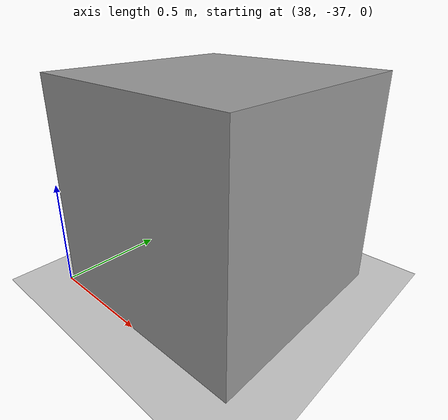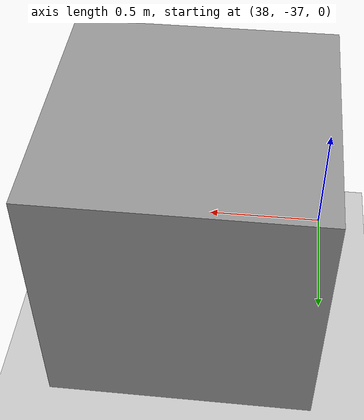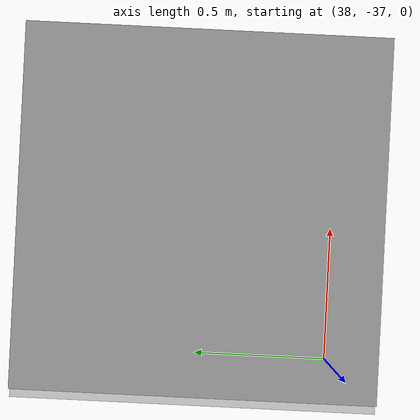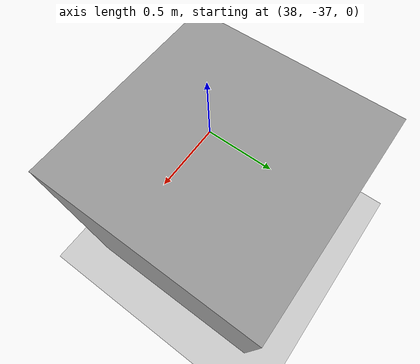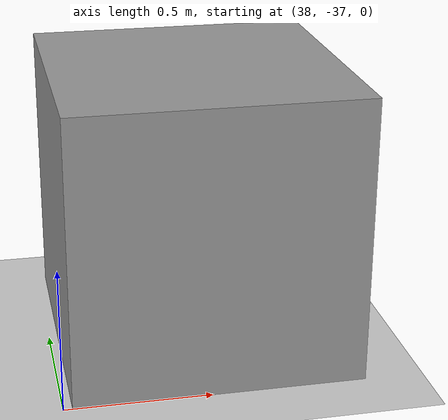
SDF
<sdf version="1.4">
	<world name="test_world1">
		<light name='sun' type='directional'>
	      <cast_shadows>1</cast_shadows>
	      <pose>0 0 10 0 -0 0</pose>
	      <diffuse>0.8 0.8 0.8 1</diffuse>
	      <specular>0.2 0.2 0.2 1</specular>
	      <attenuation>
	        <range>1000</range>
	        <constant>0.9</constant>
	        <linear>0.01</linear>
	        <quadratic>0.001</quadratic>
	      </attenuation>
	      <direction>-0.5 0.1 -0.9</direction>
	    </light>
		<gravity>0 0 -9.8</gravity>
	    <magnetic_field>6e-06 2.3e-05 -4.2e-05</magnetic_field>
	    <atmosphere type='adiabatic'/>
	    <physics type='ode'>
	      <max_step_size>0.001</max_step_size>
	      <real_time_factor>1</real_time_factor>
	      <real_time_update_rate>1000</real_time_update_rate>
	    </physics>
	    <scene>
	      <ambient>0.4 0.4 0.4 1</ambient>
	      <background>0.7 0.7 0.7 1</background>
	      <shadows>1</shadows>
	    </scene>
	    <wind/>
	    <spherical_coordinates>
	      <surface_model>EARTH_WGS84</surface_model>
	      <latitude_deg>0</latitude_deg>
	      <longitude_deg>0</longitude_deg>
	      <elevation>0</elevation>
	      <heading_deg>0</heading_deg>
	    </spherical_coordinates>
		<include>
	      <uri>model://ground_plane</uri>
	    </include>

	    <model name='unit_box'>
	      <pose>38.53 -36.50 0.5 0 0 0</pose>
	      <link name='link'>
	        <inertial>
	          <mass>1</mass>
	          <inertia>
	            <ixx>0.166667</ixx>
	            <ixy>0</ixy>
	            <ixz>0</ixz>
	            <iyy>0.166667</iyy>
	            <iyz>0</iyz>
	            <izz>0.166667</izz>
	          </inertia>
	          <pose>0 0 0 0 -0 0</pose>
	        </inertial>
	        <collision name='collision'>
	          <geometry>
	            <box>
	              <size>1 1 1</size>
	            </box>
	          </geometry>
	          <max_contacts>10</max_contacts>
	          <surface>
	            <contact>
	              <ode/>
	            </contact>
	            <bounce/>
	            <friction>
	              <torsional>
	                <ode/>
	              </torsional>
	              <ode/>
	            </friction>
	          </surface>
	        </collision>
	        <visual name='visual'>
	          <geometry>
	            <box>
	              <size>1 1 1</size>
	            </box>
	          </geometry>
	          <material>
	            <script>
	              <name>Gazebo/Grey</name>
	              <uri>file://media/materials/scripts/gazebo.material</uri>
	            </script>
	          </material>
	        </visual>
	        <self_collide>0</self_collide>
	        <enable_wind>0</enable_wind>
	        <kinematic>0</kinematic>
	      </link>
	    </model>
	    <plugin name="distance_plugin" filename="librei_gazebo_distance_monitor.so">
	    	<sut_obj>nissanleaf</sut_obj>
	    	<dyn_obj>
	    		<name>unit_box</name>
	    	</dyn_obj>
	    </plugin>
	</world>
</sdf>
